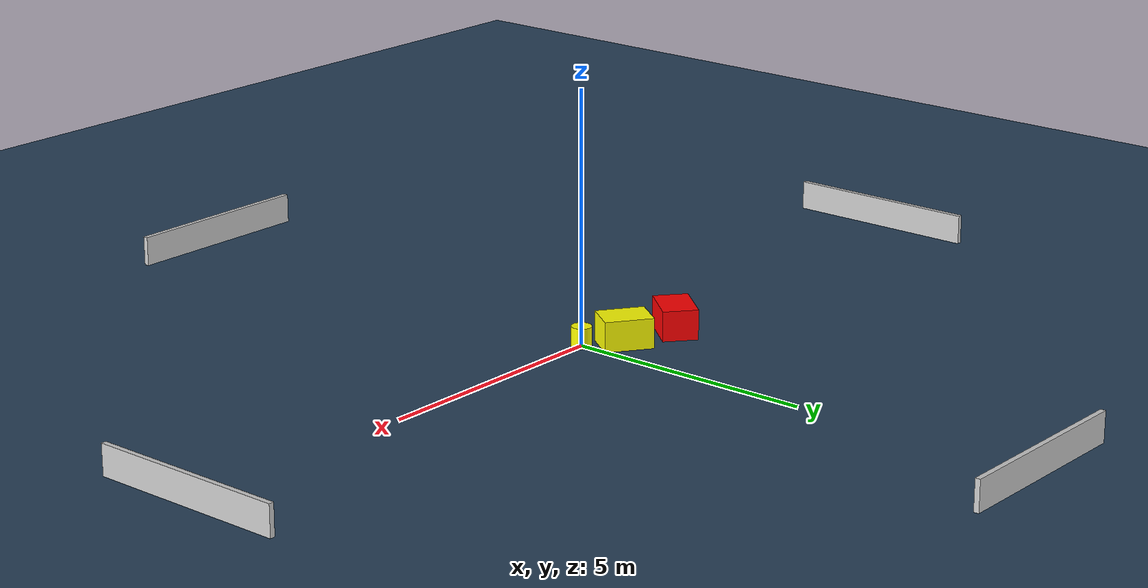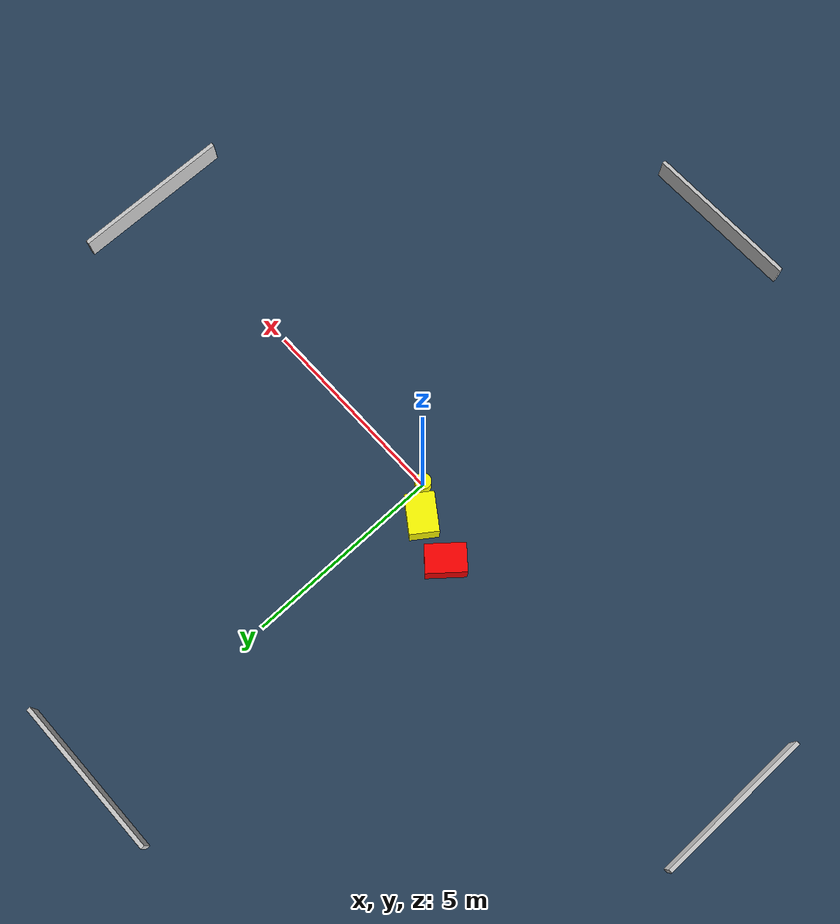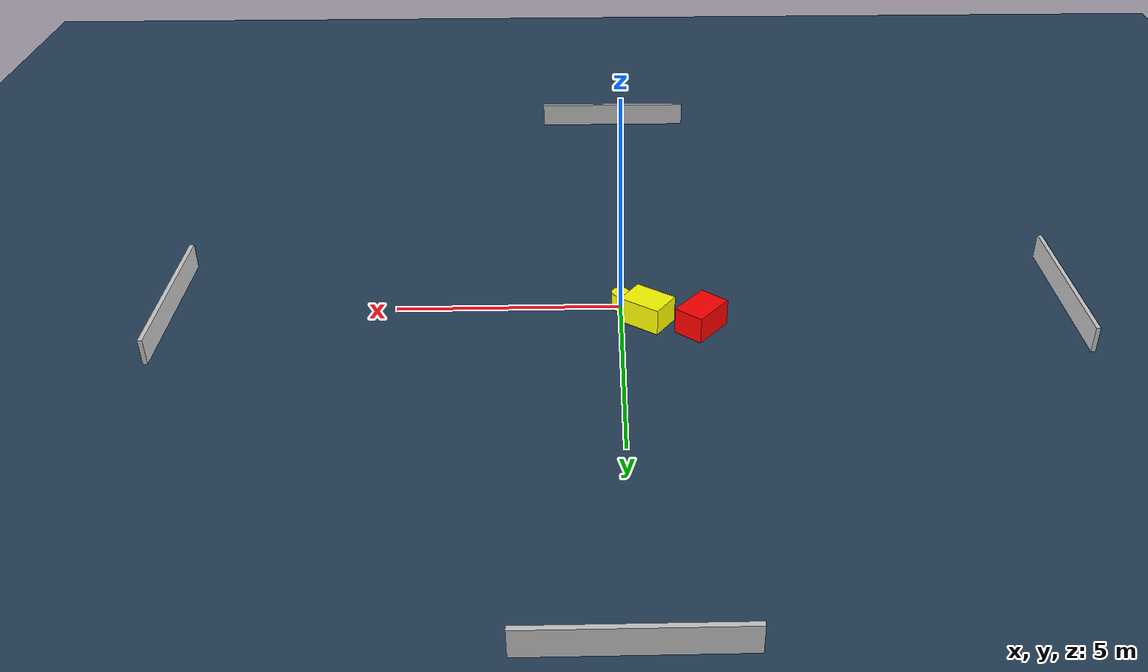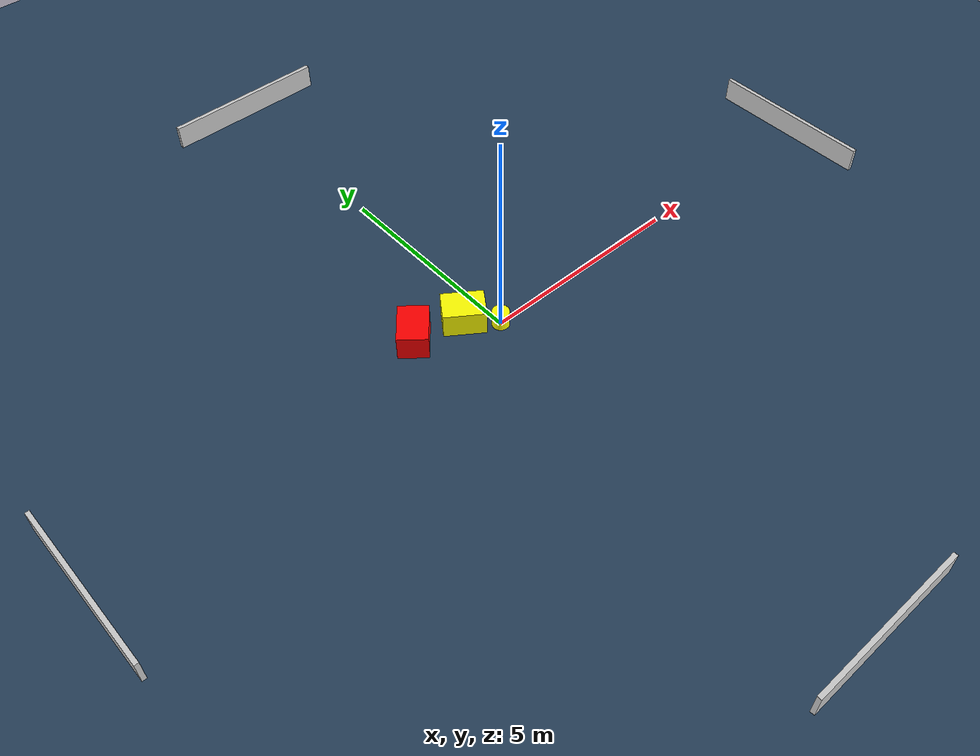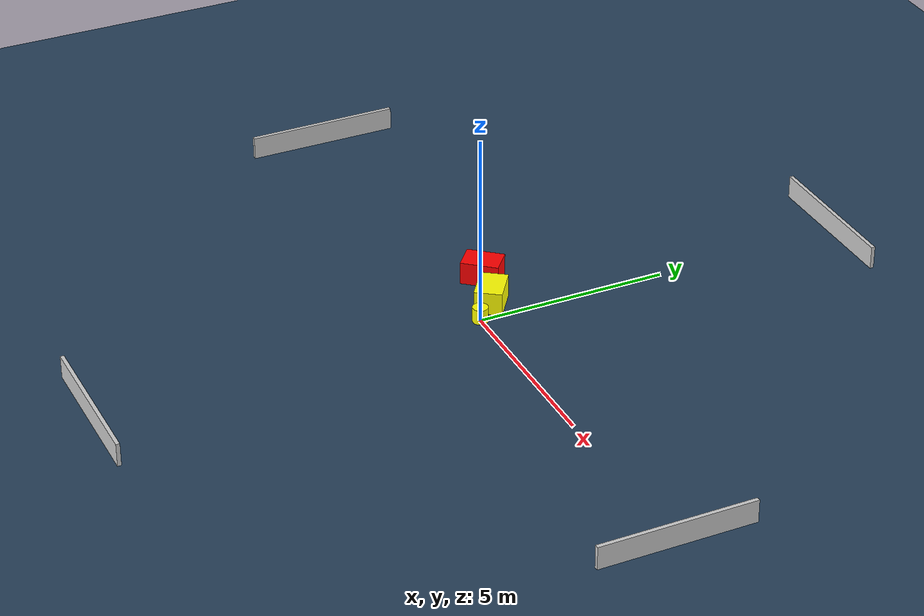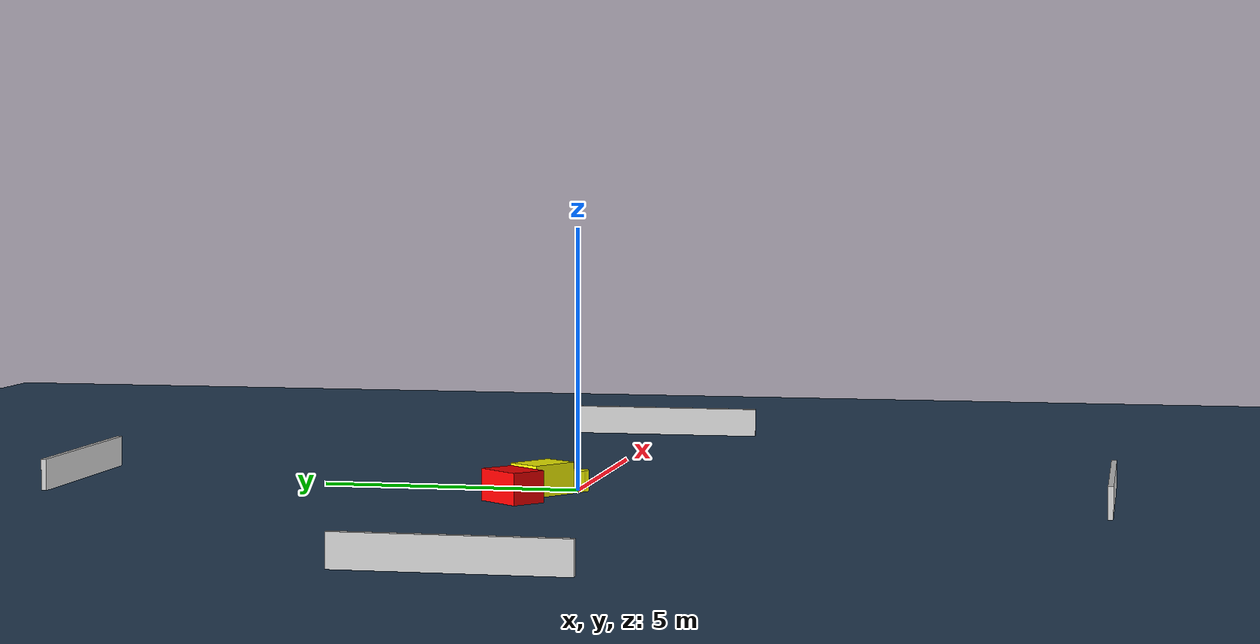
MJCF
<?xml version="1.0" ?>
<mujoco model="generated_environment">
  <option timestep="0.01" integrator="RK4" cone="elliptic"/>
  <default>
    <geom density="1"/>
  </default>
  <asset>
    <texture builtin="gradient" height="3072" name="skybox" rgb1="0.3 0.5 0.7" rgb2="0 0 0" type="skybox" width="512"/>
    <texture builtin="checker" height="300" name="groundplane" rgb1="0.2 0.3 0.4" rgb2="0.1 0.2 0.3" type="2d" width="300"/>
    <material name="groundplane" reflectance="0.2" texrepeat="5 5" texture="groundplane"/>
  </asset>
  <worldbody>
    <light dir="0 0 -1" directional="true" pos="0 0 1.5"/>
    <geom condim="3" friction="0.5 0.005 0.001" material="groundplane" name="floor" pos="0 0 0" size="0 0 0.05" type="plane"/>
    <body name="walls">
      <geom name="wall_1" condim="4" pos="-10.0 0.0 0.3" rgba="0.800000011920929 0.800000011920929 0.800000011920929 1.0" size="0.05 2.0 0.3" type="box"/>
      <geom name="wall_2" condim="4" pos="10.0 0.0 0.3" rgba="0.800000011920929 0.800000011920929 0.800000011920929 1.0" size="0.05 2.0 0.3" type="box"/>
      <geom name="wall_3" condim="4" pos="0.0 -10.0 0.3" rgba="0.800000011920929 0.800000011920929 0.800000011920929 1.0" size="2.0 0.05 0.3" type="box"/>
      <geom name="wall_4" condim="4" pos="0.0 10.0 0.3" rgba="0.800000011920929 0.800000011920929 0.800000011920929 1.0" size="2.0 0.05 0.3" type="box"/>
    </body>
    <body name="robot">
      <joint name="joint_x" type="slide" pos="0 0 0" axis="1 0 0"/>
      <joint name="joint_y" type="slide" pos="0 0 0" axis="0 1 0"/>
      <geom name="robot" type="cylinder" pos="0.0 0.0 0.2" size="0.2 0.2 0.0" mass="5.0" friction="1.0 0.005 0.0001" condim="4" rgba="1.0 1.0 0.0 1.0"/>
    </body>
    <body name="obstacle_1_movable">
      <geom name="obstacle_1_movable" condim="4" pos="-0.5786268549111334 0.5726423909200148 0.3" euler="0 0 54.87373572392723" friction="0.0 0.005 0.001" rgba="1.0 1.0 0.0 1.0" size="0.35688182164643856 0.48365181243311633 0.3" type="box" mass="0.1"/>
      <joint type="free"/>
    </body>
    <body name="obstacle_2_static">
      <geom name="obstacle_2_static" condim="4" pos="-1.7345759325218755 0.8852462438054597 0.3" euler="0 0 139.95979539964657" friction="0.0 0.005 0.001" rgba="1.0 0.0 0.0 1.0" size="0.34771090342158906 0.49095921019669364 0.3" type="box"/>
    </body>
  </worldbody>
  <actuator>
    <motor name="actuator_x" joint="joint_x" gear="1" ctrlrange="-1 1"/>
    <motor name="actuator_y" joint="joint_y" gear="1" ctrlrange="-1 1"/>
  </actuator>
</mujoco>
